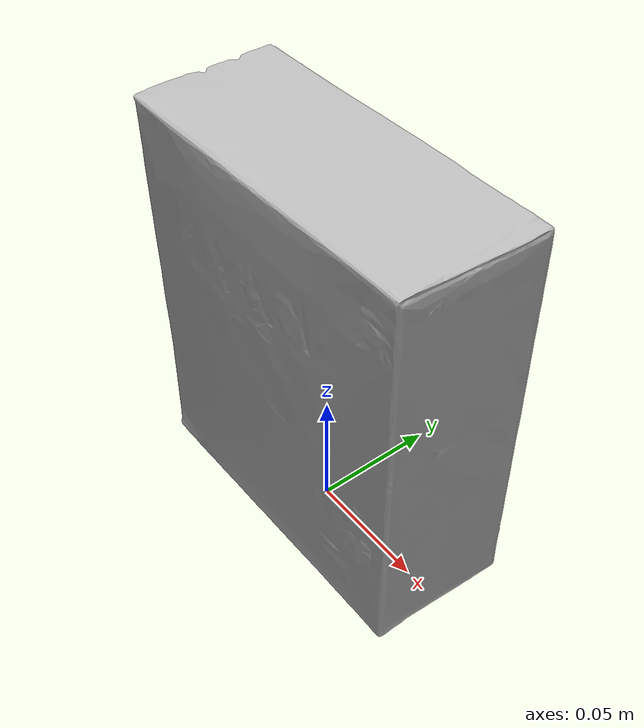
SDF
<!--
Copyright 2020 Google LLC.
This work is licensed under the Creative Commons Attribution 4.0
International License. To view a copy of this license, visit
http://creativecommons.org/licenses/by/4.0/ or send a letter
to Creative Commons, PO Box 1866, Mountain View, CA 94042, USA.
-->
<?xml version="1.0" ?>
<sdf version="1.6">
  <model name="Nestl_Crunch_Girl_Scouts_Cookie_Flavors_Caramel_Coconut_78_oz_box">
    <link name="link_0">
      <visual name="visual">
        <geometry>
          <mesh>
            <uri>meshes/model.obj</uri>
          </mesh>
        </geometry>
      </visual>
      <collision name="collision_0">
        <geometry>
          <mesh>
            <uri>meshes/model.obj</uri>
          </mesh>
        </geometry>
      </collision>
    </link>
  </model>
</sdf>
